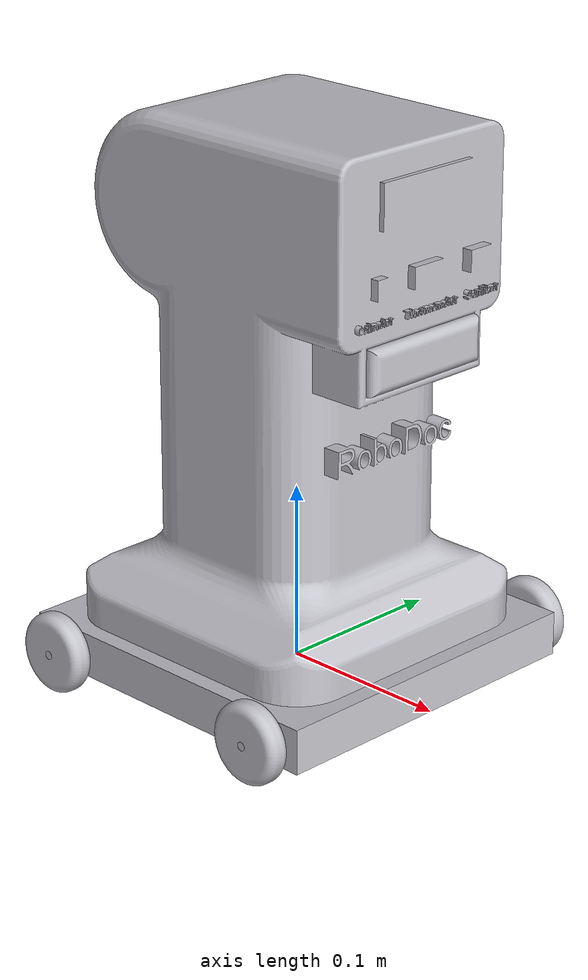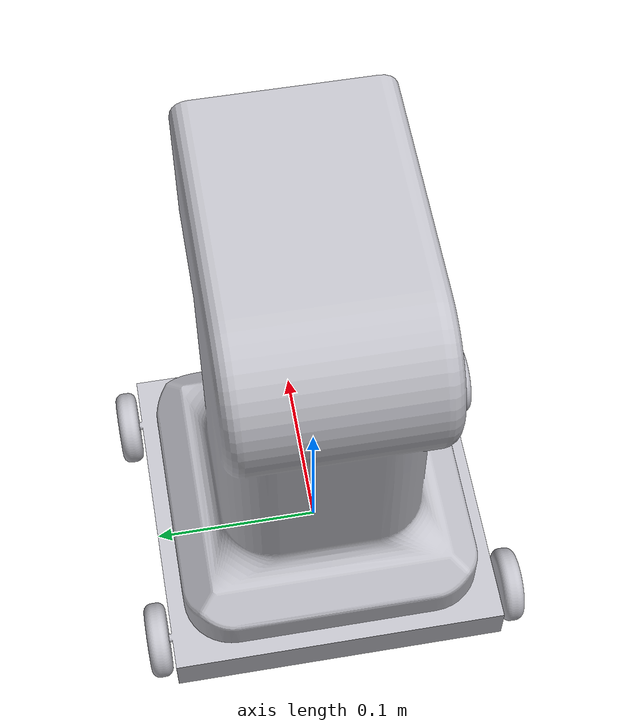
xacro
<?xml version="1.0" ?>
<robot name="final" xmlns:xacro="http://www.ros.org/wiki/xacro">

<xacro:include filename="$(find final_description)/urdf/materials.xacro" />
<xacro:include filename="$(find final_description)/urdf/final.trans" />
<xacro:include filename="$(find final_description)/urdf/final.gazebo" />
<link name="base_link">
  <inertial>
    <origin xyz="0.0 0.0 0.0125" rpy="0 0 0"/>
    <mass value="7.859248063374004"/>
    <inertia ixx="0.026683" iyy="0.026628" izz="0.052492" ixy="0.0" iyz="-0.0" ixz="-0.0"/>
  </inertial>
  <visual>
    <origin xyz="0 0 0" rpy="0 0 0"/>
    <geometry>
      <mesh filename="package://final_description/meshes/base_link.stl" scale="0.001 0.001 0.001"/>
    </geometry>
    <material name="silver"/>
  </visual>
  <collision>
    <origin xyz="0 0 0" rpy="0 0 0"/>
    <geometry>
      <mesh filename="package://final_description/meshes/base_link.stl" scale="0.001 0.001 0.001"/>
    </geometry>
  </collision>
</link>

<link name="front_left_wheel_1">
  <inertial>
    <origin xyz="-3.5110803153770576e-15 0.006500000000000006 1.734723475976807e-18" rpy="0 0 0"/>
    <mass value="0.14898293349149735"/>
    <inertia ixx="2e-05" iyy="3.6e-05" izz="2e-05" ixy="0.0" iyz="-0.0" ixz="0.0"/>
  </inertial>
  <visual>
    <origin xyz="-0.075 0.115 -0.0125" rpy="0 0 0"/>
    <geometry>
      <mesh filename="package://final_description/meshes/front_left_wheel_1.stl" scale="0.001 0.001 0.001"/>
    </geometry>
    <material name="silver"/>
  </visual>
  <collision>
    <origin xyz="-0.075 0.115 -0.0125" rpy="0 0 0"/>
    <geometry>
      <mesh filename="package://final_description/meshes/front_left_wheel_1.stl" scale="0.001 0.001 0.001"/>
    </geometry>
  </collision>
</link>

<link name="rare_left_wheel_1">
  <inertial>
    <origin xyz="3.5110803153770576e-15 0.006500000000000006 0.0" rpy="0 0 0"/>
    <mass value="0.14898293349149733"/>
    <inertia ixx="2e-05" iyy="3.6e-05" izz="2e-05" ixy="-0.0" iyz="0.0" ixz="0.0"/>
  </inertial>
  <visual>
    <origin xyz="0.075 0.115 -0.0125" rpy="0 0 0"/>
    <geometry>
      <mesh filename="package://final_description/meshes/rare_left_wheel_1.stl" scale="0.001 0.001 0.001"/>
    </geometry>
    <material name="silver"/>
  </visual>
  <collision>
    <origin xyz="0.075 0.115 -0.0125" rpy="0 0 0"/>
    <geometry>
      <mesh filename="package://final_description/meshes/rare_left_wheel_1.stl" scale="0.001 0.001 0.001"/>
    </geometry>
  </collision>
</link>

<link name="rare_right_wheel_1">
  <inertial>
    <origin xyz="3.5110803153770576e-15 -0.006500000000000006 1.734723475976807e-18" rpy="0 0 0"/>
    <mass value="0.14898293349149735"/>
    <inertia ixx="2e-05" iyy="3.6e-05" izz="2e-05" ixy="0.0" iyz="0.0" ixz="0.0"/>
  </inertial>
  <visual>
    <origin xyz="0.075 -0.115 -0.0125" rpy="0 0 0"/>
    <geometry>
      <mesh filename="package://final_description/meshes/rare_right_wheel_1.stl" scale="0.001 0.001 0.001"/>
    </geometry>
    <material name="silver"/>
  </visual>
  <collision>
    <origin xyz="0.075 -0.115 -0.0125" rpy="0 0 0"/>
    <geometry>
      <mesh filename="package://final_description/meshes/rare_right_wheel_1.stl" scale="0.001 0.001 0.001"/>
    </geometry>
  </collision>
</link>

<link name="front_right_wheel_1">
  <inertial>
    <origin xyz="-3.5110803153770576e-15 -0.006500000000000006 1.734723475976807e-18" rpy="0 0 0"/>
    <mass value="0.14898293349149733"/>
    <inertia ixx="2e-05" iyy="3.6e-05" izz="2e-05" ixy="0.0" iyz="0.0" ixz="0.0"/>
  </inertial>
  <visual>
    <origin xyz="-0.075 -0.115 -0.0125" rpy="0 0 0"/>
    <geometry>
      <mesh filename="package://final_description/meshes/front_right_wheel_1.stl" scale="0.001 0.001 0.001"/>
    </geometry>
    <material name="silver"/>
  </visual>
  <collision>
    <origin xyz="-0.075 -0.115 -0.0125" rpy="0 0 0"/>
    <geometry>
      <mesh filename="package://final_description/meshes/front_right_wheel_1.stl" scale="0.001 0.001 0.001"/>
    </geometry>
  </collision>
</link>

<link name="top_body_1">
  <inertial>
    <origin xyz="0.0011011412285528025 4.752046618823842e-06 0.14186126715929814" rpy="0 0 0"/>
    <mass value="41.106007210046286"/>
    <inertia ixx="0.389974" iyy="0.415364" izz="0.14107" ixy="-1.8e-05" iyz="-1.4e-05" ixz="-0.003323"/>
  </inertial>
  <visual>
    <origin xyz="-0.0 -0.0 -0.025" rpy="0 0 0"/>
    <geometry>
      <mesh filename="package://final_description/meshes/top_body_1.stl" scale="0.001 0.001 0.001"/>
    </geometry>
    <material name="silver"/>
  </visual>
  <collision>
    <origin xyz="-0.0 -0.0 -0.025" rpy="0 0 0"/>
    <geometry>
      <mesh filename="package://final_description/meshes/top_body_1.stl" scale="0.001 0.001 0.001"/>
    </geometry>
  </collision>
</link>

<link name="drawer_1">
  <inertial>
    <origin xyz="0.017243900233500503 0.0 0.0" rpy="0 0 0"/>
    <mass value="0.5410320128930141"/>
    <inertia ixx="0.000315" iyy="8.1e-05" izz="0.000341" ixy="-0.0" iyz="-0.0" ixz="0.0"/>
  </inertial>
  <visual>
    <origin xyz="-0.06 -0.0 -0.1975" rpy="0 0 0"/>
    <geometry>
      <mesh filename="package://final_description/meshes/drawer_1.stl" scale="0.001 0.001 0.001"/>
    </geometry>
    <material name="silver"/>
  </visual>
  <collision>
    <origin xyz="-0.06 -0.0 -0.1975" rpy="0 0 0"/>
    <geometry>
      <mesh filename="package://final_description/meshes/drawer_1.stl" scale="0.001 0.001 0.001"/>
    </geometry>
  </collision>
</link>

<joint name="front_left_wheel_joint" type="continuous">
  <origin xyz="0.075 -0.115 0.0125" rpy="0 0 0"/>
  <parent link="base_link"/>
  <child link="front_left_wheel_1"/>
  <axis xyz="0.0 -1.0 0.0"/>
</joint>

<joint name="rare_left_wheel_joint" type="continuous">
  <origin xyz="-0.075 -0.115 0.0125" rpy="0 0 0"/>
  <parent link="base_link"/>
  <child link="rare_left_wheel_1"/>
  <axis xyz="0.0 -1.0 0.0"/>
</joint>

<joint name="rare_left_wheel_joint (1)" type="continuous">
  <origin xyz="-0.075 0.115 0.0125" rpy="0 0 0"/>
  <parent link="base_link"/>
  <child link="rare_right_wheel_1"/>
  <axis xyz="0.0 1.0 0.0"/>
</joint>

<joint name="front_right_wheel_joint" type="continuous">
  <origin xyz="0.075 0.115 0.0125" rpy="0 0 0"/>
  <parent link="base_link"/>
  <child link="front_right_wheel_1"/>
  <axis xyz="0.0 -1.0 0.0"/>
</joint>

<joint name="top_body_rigid" type="fixed">
  <origin xyz="0.0 0.0 0.025" rpy="0 0 0"/>
  <parent link="base_link"/>
  <child link="top_body_1"/>
</joint>

<joint name="drawer_slide" type="prismatic">
  <origin xyz="0.06 0.0 0.1725" rpy="0 0 0"/>
  <parent link="top_body_1"/>
  <child link="drawer_1"/>
  <axis xyz="1.0 0.0 0.0"/>
  <limit upper="0.03" lower="0.0" effort="100" velocity="100"/>
</joint>

</robot>

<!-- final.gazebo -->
<robot name="final" xmlns:xacro="http://www.ros.org/wiki/xacro" >

<xacro:property name="body_color" value="Gazebo/Silver" />

<gazebo>
  <plugin name="control" filename="libgazebo_ros_control.so"/>
</gazebo>
<gazebo reference="base_link">
  <material>${body_color}</material>
  <mu1>0.2</mu1>
  <mu2>0.2</mu2>
  <selfCollide>true</selfCollide>
  <gravity>true</gravity>
</gazebo>

<gazebo reference="front_left_wheel_1">
  <material>${body_color}</material>
  <mu1>0.2</mu1>
  <mu2>0.2</mu2>
  <selfCollide>true</selfCollide>
</gazebo>

<gazebo reference="rare_left_wheel_1">
  <material>${body_color}</material>
  <mu1>0.2</mu1>
  <mu2>0.2</mu2>
  <selfCollide>true</selfCollide>
</gazebo>

<gazebo reference="rare_right_wheel_1">
  <material>${body_color}</material>
  <mu1>0.2</mu1>
  <mu2>0.2</mu2>
  <selfCollide>true</selfCollide>
</gazebo>

<gazebo reference="front_right_wheel_1">
  <material>${body_color}</material>
  <mu1>0.2</mu1>
  <mu2>0.2</mu2>
  <selfCollide>true</selfCollide>
</gazebo>

<gazebo reference="top_body_1">
  <material>${body_color}</material>
  <mu1>0.2</mu1>
  <mu2>0.2</mu2>
  <selfCollide>true</selfCollide>
</gazebo>

<gazebo reference="drawer_1">
  <material>${body_color}</material>
  <mu1>0.2</mu1>
  <mu2>0.2</mu2>
  <selfCollide>true</selfCollide>
</gazebo>

</robot>
